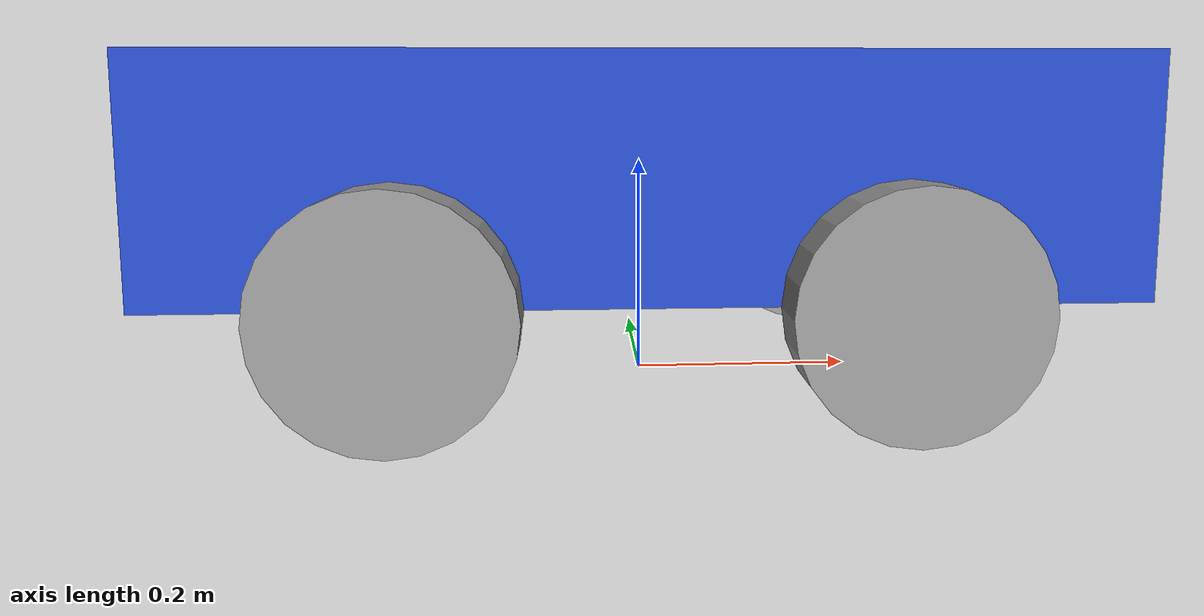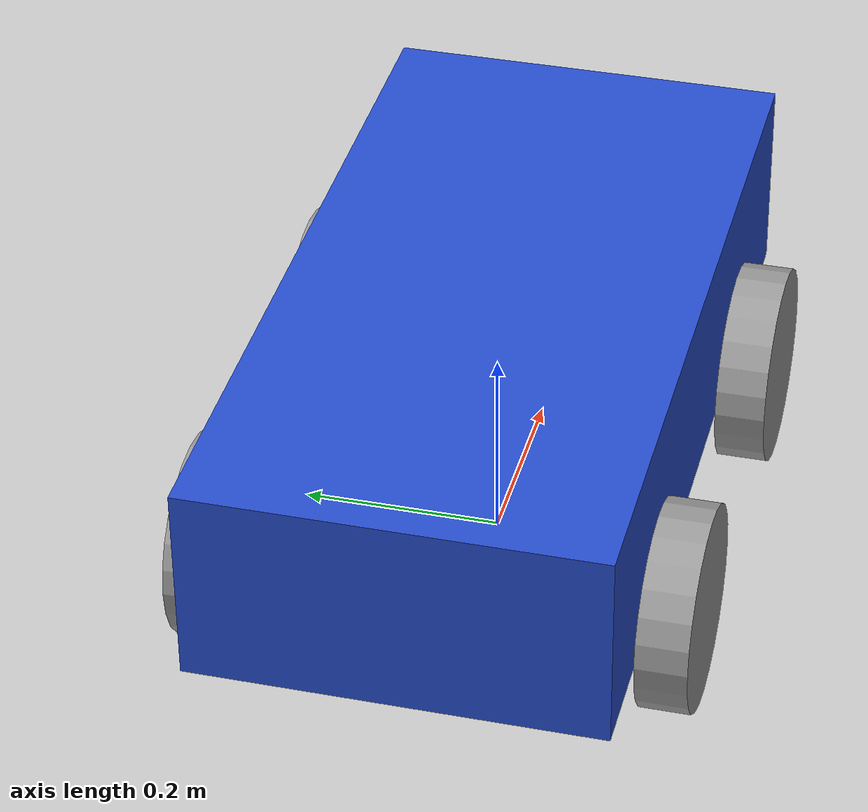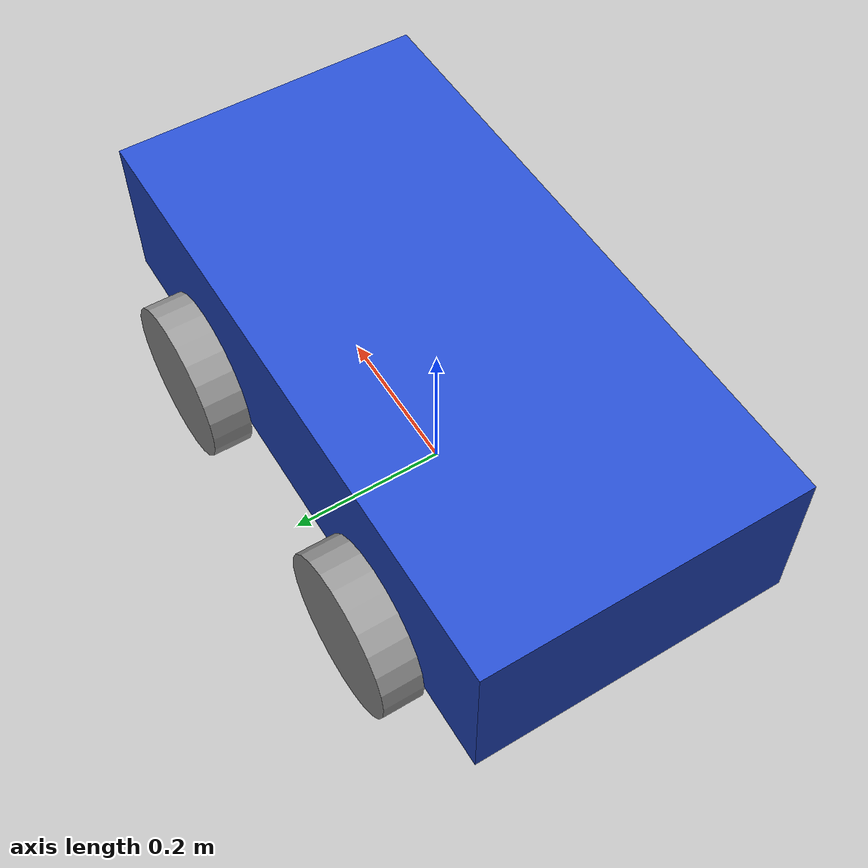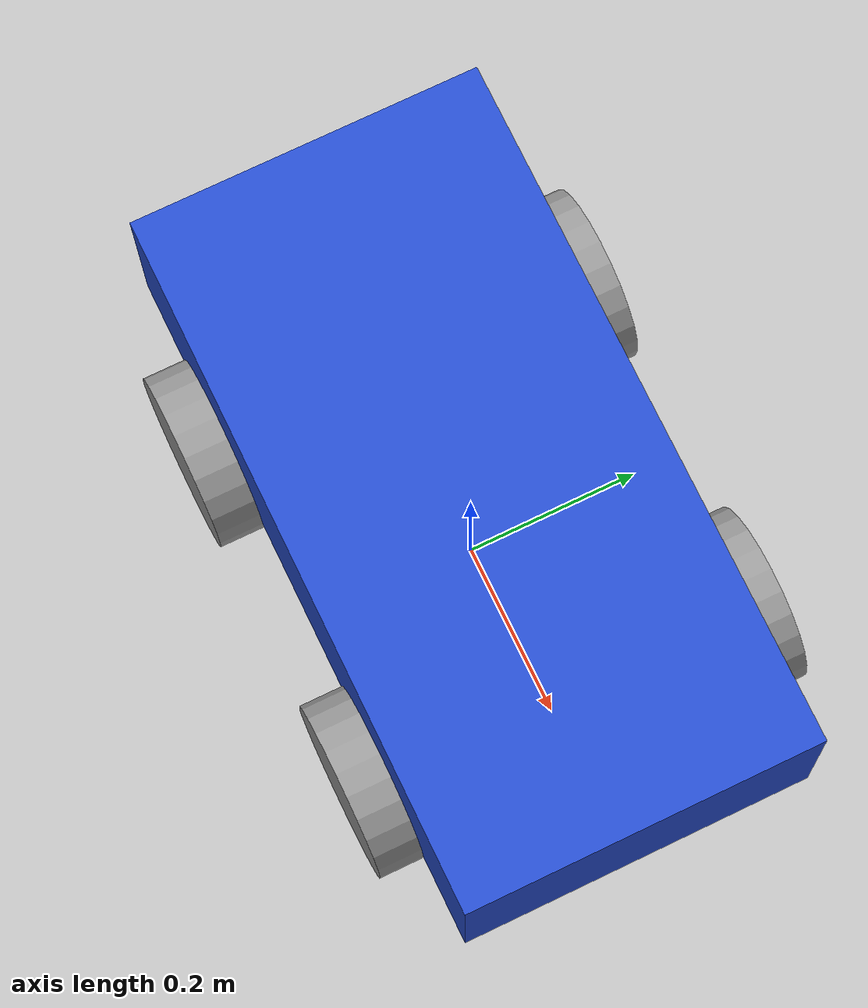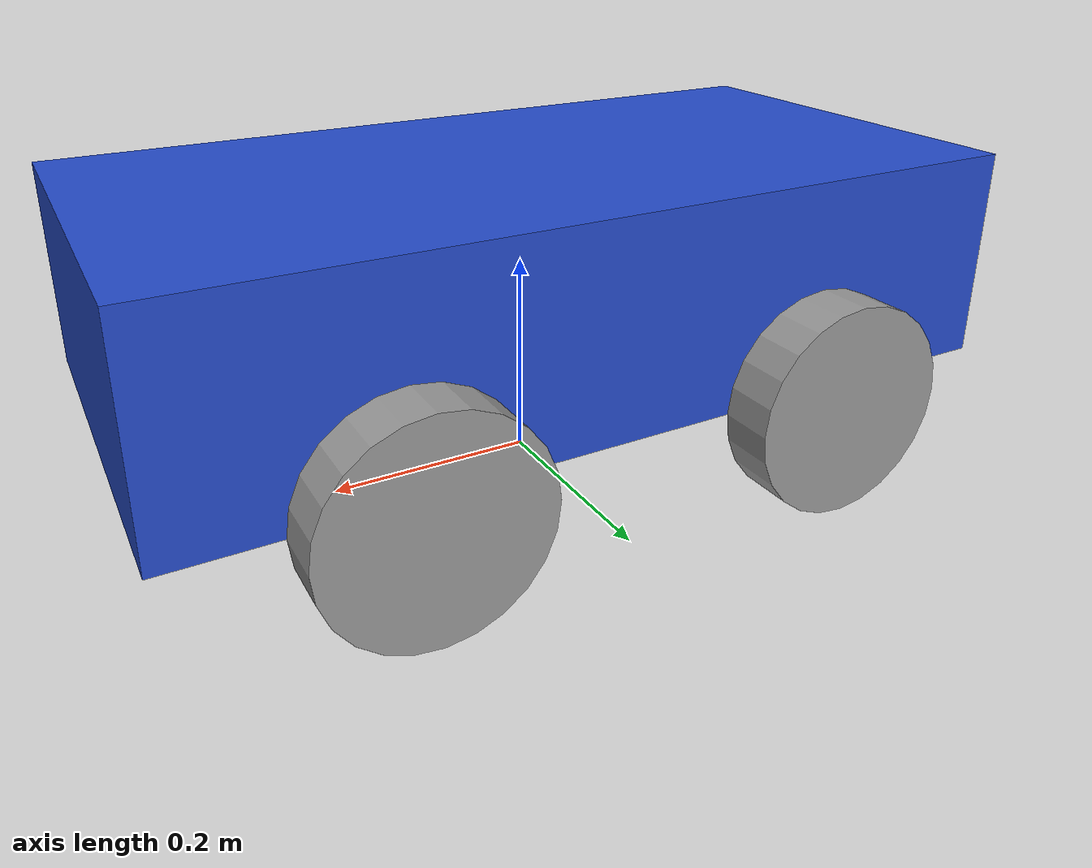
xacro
<?xml version="1.0"?>
<robot xmlns:xacro="http://www.ros.org/wiki/xacro">

    <xacro:property name="base_length" value="0.8" />
    <xacro:property name="base_width" value="0.4" />
    <xacro:property name="base_height" value="0.2" />
    <xacro:property name="wheel_radius" value="0.1" />
    <xacro:property name="wheel_length" value="0.05" />

    <link name="base_footprint" />

    <link name="base_link">
        <visual>
            <geometry>
                <box size="${base_length} ${base_width} ${base_height}" />
            </geometry>
            <origin xyz="0 0 ${base_height / 2.0}" rpy="0 0 0" />
            <material name="blue" />
        </visual>
        <collision>
            <geometry>
                <box size="${base_length} ${base_width} ${base_height}" />
            </geometry>
            <origin xyz="0 0 ${base_height / 2.0}" rpy="0 0 0" />
        </collision>
        <xacro:box_inertia m="5.0" x="${base_length}" y="${base_width}" z="${base_height}"
                           o_xyz="0 0 ${base_height / 2.0}" o_rpy="0 0 0" />
    </link>

    <xacro:macro name="wheel_link" params="prefix">
        <link name="${prefix}_wheel_link">
            <visual>
                <geometry>
                    <cylinder radius="${wheel_radius}" length="${wheel_length}" />
                </geometry>
                <origin xyz="0 0 0" rpy="${pi / 2.0} 0 0" />
                <material name="grey" />
            </visual>
            <collision>
                <geometry>
                    <sphere radius="${wheel_radius}" />
                </geometry>
                <origin xyz="0 0 0" rpy="0 0 0" />
            </collision>
            <xacro:cylinder_inertia m="1.0" r="${wheel_radius}" l="${wheel_length}"
                                    o_xyz="0 0 0" o_rpy="${pi / 2.0} 0 0" />
        </link>
    </xacro:macro>

    <xacro:wheel_link prefix="front_right" />
    <xacro:wheel_link prefix="front_left" />
    <xacro:wheel_link prefix="rear_right" />
    <xacro:wheel_link prefix="rear_left" />

    <joint name="base_joint" type="fixed">
        <parent link="base_footprint" />
        <child link="base_link" />
        <origin xyz="0 0 ${wheel_radius}" rpy="0 0 0"/>
    </joint>

    <!-- Front steering links (pivot hubs) -->
    <link name="front_right_steering_link">
        <inertial>
            <mass value="0.1" />
            <origin xyz="0 0 0" rpy="0 0 0" />
            <inertia ixx="0.0001" ixy="0" ixz="0" iyy="0.0001" iyz="0" izz="0.0001" />
        </inertial>
    </link>

    <link name="front_left_steering_link">
        <inertial>
            <mass value="0.1" />
            <origin xyz="0 0 0" rpy="0 0 0" />
            <inertia ixx="0.0001" ixy="0" ixz="0" iyy="0.0001" iyz="0" izz="0.0001" />
        </inertial>
    </link>

    <!-- Rear steering links (pivot hubs) for 4WIS -->
    <link name="rear_right_steering_link">
        <inertial>
            <mass value="0.1" />
            <origin xyz="0 0 0" rpy="0 0 0" />
            <inertia ixx="0.0001" ixy="0" ixz="0" iyy="0.0001" iyz="0" izz="0.0001" />
        </inertial>
    </link>

    <link name="rear_left_steering_link">
        <inertial>
            <mass value="0.1" />
            <origin xyz="0 0 0" rpy="0 0 0" />
            <inertia ixx="0.0001" ixy="0" ixz="0" iyy="0.0001" iyz="0" izz="0.0001" />
        </inertial>
    </link>

    <!-- Front steering joints revolute around Z controlled by position -->
    <joint name="base_front_right_steering_joint" type="revolute">
        <parent link="base_link" />
        <child link="front_right_steering_link" />
        <origin xyz="${base_length / 4.0} ${-(base_width + wheel_length) / 2.0} 0" rpy="0 0 0" />
        <axis xyz="0 0 1" />
        <limit lower="-1.5708" upper="1.5708" effort="10" velocity="1.0" />
    </joint>

    <joint name="base_front_left_steering_joint" type="revolute">
        <parent link="base_link" />
        <child link="front_left_steering_link" />
        <origin xyz="${base_length / 4.0} ${(base_width + wheel_length) / 2.0} 0" rpy="0 0 0" />
        <axis xyz="0 0 1" />
        <limit lower="-1.5708" upper="1.5708" effort="10" velocity="1.0" />
    </joint>

    <!-- Rear steering joints revolute around Z controlled by position -->
    <joint name="base_rear_right_steering_joint" type="revolute">
        <parent link="base_link" />
        <child link="rear_right_steering_link" />
        <origin xyz="${-base_length / 4.0} ${-(base_width + wheel_length) / 2.0} 0" rpy="0 0 0" />
        <axis xyz="0 0 1" />
        <limit lower="-1.5708" upper="1.5708" effort="10" velocity="1.0" />
    </joint>

    <joint name="base_rear_left_steering_joint" type="revolute">
        <parent link="base_link" />
        <child link="rear_left_steering_link" />
        <origin xyz="${-base_length / 4.0} ${(base_width + wheel_length) / 2.0} 0" rpy="0 0 0" />
        <axis xyz="0 0 1" />
        <limit lower="-1.5708" upper="1.5708" effort="10" velocity="1.0" />
    </joint>

    <!-- Front wheel rolling joints child of steering link continuous around Y -->
    <joint name="base_front_right_wheel_joint" type="continuous">
        <parent link="front_right_steering_link" />
        <child link="front_right_wheel_link" />
        <origin xyz="0 0 0" rpy="0 0 0" />
        <axis xyz="0 1 0" />
    </joint>

    <joint name="base_front_left_wheel_joint" type="continuous">
        <parent link="front_left_steering_link" />
        <child link="front_left_wheel_link" />
        <origin xyz="0 0 0" rpy="0 0 0" />
        <axis xyz="0 1 0" />
    </joint>

    <!-- Rear wheel rolling joints child of steering link continuous around Y -->
    <joint name="base_rear_right_wheel_joint" type="continuous">
        <parent link="rear_right_steering_link" />
        <child link="rear_right_wheel_link" />
        <origin xyz="0 0 0" rpy="0 0 0" />
        <axis xyz="0 1 0" />
    </joint>

    <joint name="base_rear_left_wheel_joint" type="continuous">
        <parent link="rear_left_steering_link" />
        <child link="rear_left_wheel_link" />
        <origin xyz="0 0 0" rpy="0 0 0" />
        <axis xyz="0 1 0" />
    </joint>

    <!-- Front wheels grip the ground for rolling -->
    <gazebo reference="front_left_wheel_link">
        <mu1>5.0</mu1>
        <mu2>5.0</mu2>
        <kp>1e6</kp>
        <kd>10.0</kd>
        <minDepth>0.001</minDepth>
        <fdir1>1 0 0</fdir1>
    </gazebo>

    <gazebo reference="front_right_wheel_link">
        <mu1>5.0</mu1>
        <mu2>5.0</mu2>
        <kp>1e6</kp>
        <kd>10.0</kd>
        <minDepth>0.001</minDepth>
        <fdir1>1 0 0</fdir1>
    </gazebo>

    <gazebo reference="rear_left_wheel_link">
        <mu1>5.0</mu1>
        <mu2>5.0</mu2>
        <kp>1e6</kp>
        <kd>10.0</kd>
        <minDepth>0.001</minDepth>
        <fdir1>1 0 0</fdir1>
    </gazebo>

    <gazebo reference="rear_right_wheel_link">
        <mu1>5.0</mu1>
        <mu2>5.0</mu2>
        <kp>1e6</kp>
        <kd>10.0</kd>
        <minDepth>0.001</minDepth>
        <fdir1>1 0 0</fdir1>
    </gazebo>

</robot>
